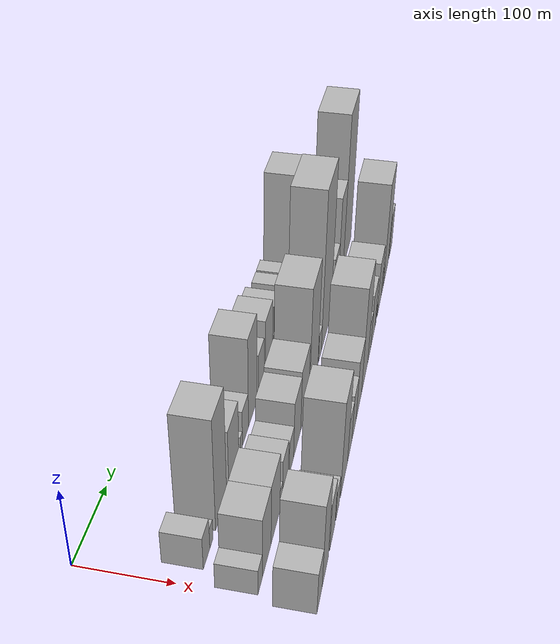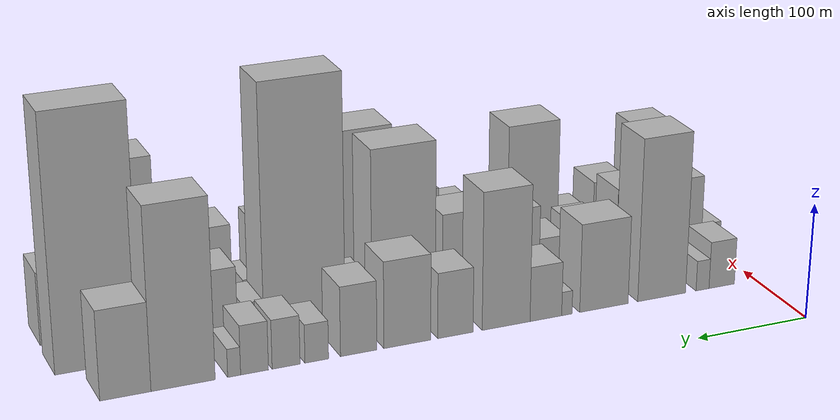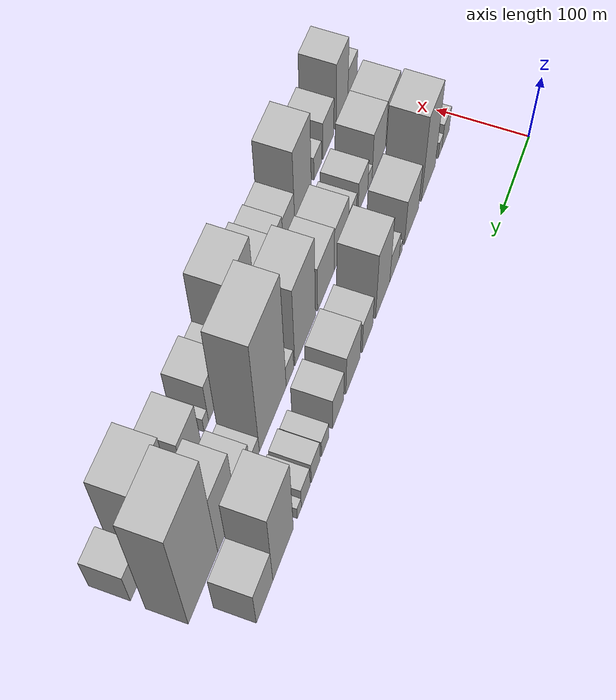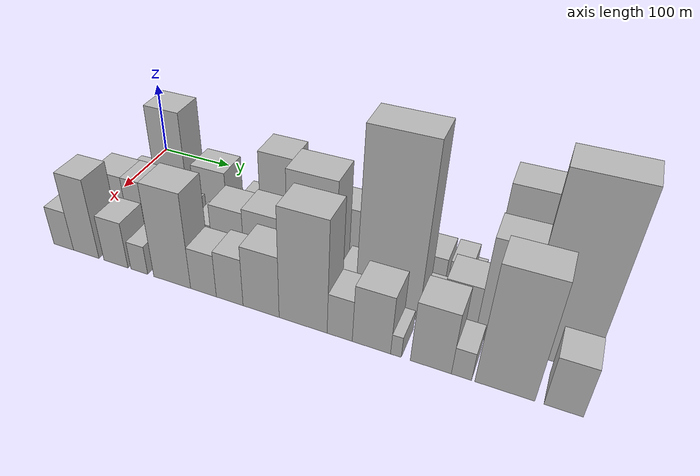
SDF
<sdf version="1.6">
 <world name="default">
  <model name="building_17">
   <static>1</static>
   <pose>100.0000 32.7443 0 0.000000 0.000000 0.000000</pose>
   <link name="link">
    <pose>0 0 21.00 0 0 0</pose>
    <collision name="collision"><geometry><box><size>40.0000 24.3954 42.0000</size></box></geometry></collision>
    <visual name="visual">
     <cast_shadows>0</cast_shadows>
     <geometry><box><size>40.0000 24.3954 42.0000</size></box></geometry>
     <material>
      <script>
       <uri>model://HANNAS_wall/materials/scripts</uri>
       <uri>model://HANNAS_wall/materials/textures</uri>
       <name>vrc/HANNAS_wall</name>
      </script>
     </material>
    </visual>
   </link>
  </model>
  <model name="building_18">
   <static>1</static>
   <pose>100.0000 51.1259 0 0.000000 0.000000 0.000000</pose>
   <link name="link">
    <pose>0 0 13.50 0 0 0</pose>
    <collision name="collision"><geometry><box><size>40.0000 12.3677 27.0000</size></box></geometry></collision>
    <visual name="visual">
     <cast_shadows>0</cast_shadows>
     <geometry><box><size>40.0000 12.3677 27.0000</size></box></geometry>
     <material>
      <script>
       <uri>model://HANNAS_wall/materials/scripts</uri>
       <uri>model://HANNAS_wall/materials/textures</uri>
       <name>vrc/HANNAS_wall</name>
      </script>
     </material>
    </visual>
   </link>
  </model>
  <model name="building_19">
   <static>1</static>
   <pose>100.0000 89.8084 0 0.000000 0.000000 0.000000</pose>
   <link name="link">
    <pose>0 0 72.00 0 0 0</pose>
    <collision name="collision"><geometry><box><size>40.0000 44.9975 144.0000</size></box></geometry></collision>
    <visual name="visual">
     <cast_shadows>0</cast_shadows>
     <geometry><box><size>40.0000 44.9975 144.0000</size></box></geometry>
     <material>
      <script>
       <uri>model://HANNAS_wall/materials/scripts</uri>
       <uri>model://HANNAS_wall/materials/textures</uri>
       <name>vrc/HANNAS_wall</name>
      </script>
     </material>
    </visual>
   </link>
  </model>
  <model name="building_20">
   <static>1</static>
   <pose>100.0000 143.5928 0 0.000000 0.000000 0.000000</pose>
   <link name="link">
    <pose>0 0 39.00 0 0 0</pose>
    <collision name="collision"><geometry><box><size>40.0000 44.5713 78.0000</size></box></geometry></collision>
    <visual name="visual">
     <cast_shadows>0</cast_shadows>
     <geometry><box><size>40.0000 44.5713 78.0000</size></box></geometry>
     <material>
      <script>
       <uri>model://HANNAS_wall/materials/scripts</uri>
       <uri>model://HANNAS_wall/materials/textures</uri>
       <name>vrc/HANNAS_wall</name>
      </script>
     </material>
    </visual>
   </link>
  </model>
  <model name="building_21">
   <static>1</static>
   <pose>100.0000 177.5713 0 0.000000 0.000000 0.000000</pose>
   <link name="link">
    <pose>0 0 10.50 0 0 0</pose>
    <collision name="collision"><geometry><box><size>40.0000 9.3858 21.0000</size></box></geometry></collision>
    <visual name="visual">
     <cast_shadows>0</cast_shadows>
     <geometry><box><size>40.0000 9.3858 21.0000</size></box></geometry>
     <material>
      <script>
       <uri>model://HANNAS_wall/materials/scripts</uri>
       <uri>model://HANNAS_wall/materials/textures</uri>
       <name>vrc/HANNAS_wall</name>
      </script>
     </material>
    </visual>
   </link>
  </model>
  <model name="building_22">
   <static>1</static>
   <pose>100.0000 196.5249 0 0.000000 0.000000 0.000000</pose>
   <link name="link">
    <pose>0 0 24.00 0 0 0</pose>
    <collision name="collision"><geometry><box><size>40.0000 28.5214 48.0000</size></box></geometry></collision>
    <visual name="visual">
     <cast_shadows>0</cast_shadows>
     <geometry><box><size>40.0000 28.5214 48.0000</size></box></geometry>
     <material>
      <script>
       <uri>model://HANNAS_wall/materials/scripts</uri>
       <uri>model://HANNAS_wall/materials/textures</uri>
       <name>vrc/HANNAS_wall</name>
      </script>
     </material>
    </visual>
   </link>
  </model>
  <model name="building_23">
   <static>1</static>
   <pose>100.0000 232.0757 0 0.000000 0.000000 0.000000</pose>
   <link name="link">
    <pose>0 0 60.00 0 0 0</pose>
    <collision name="collision"><geometry><box><size>40.0000 42.5802 120.0000</size></box></geometry></collision>
    <visual name="visual">
     <cast_shadows>0</cast_shadows>
     <geometry><box><size>40.0000 42.5802 120.0000</size></box></geometry>
     <material>
      <script>
       <uri>model://HANNAS_wall/materials/scripts</uri>
       <uri>model://HANNAS_wall/materials/textures</uri>
       <name>vrc/HANNAS_wall</name>
      </script>
     </material>
    </visual>
   </link>
  </model>
  <model name="building_24">
   <static>1</static>
   <pose>100.0000 276.7771 0 0.000000 0.000000 0.000000</pose>
   <link name="link">
    <pose>0 0 28.50 0 0 0</pose>
    <collision name="collision"><geometry><box><size>40.0000 30.8225 57.0000</size></box></geometry></collision>
    <visual name="visual">
     <cast_shadows>0</cast_shadows>
     <geometry><box><size>40.0000 30.8225 57.0000</size></box></geometry>
     <material>
      <script>
       <uri>model://HANNAS_wall/materials/scripts</uri>
       <uri>model://HANNAS_wall/materials/textures</uri>
       <name>vrc/HANNAS_wall</name>
      </script>
     </material>
    </visual>
   </link>
  </model>
  <model name="building_25">
   <static>1</static>
   <pose>100.0000 318.3123 0 0.000000 0.000000 0.000000</pose>
   <link name="link">
    <pose>0 0 37.50 0 0 0</pose>
    <collision name="collision"><geometry><box><size>40.0000 40.2480 75.0000</size></box></geometry></collision>
    <visual name="visual">
     <cast_shadows>0</cast_shadows>
     <geometry><box><size>40.0000 40.2480 75.0000</size></box></geometry>
     <material>
      <script>
       <uri>model://HANNAS_wall/materials/scripts</uri>
       <uri>model://HANNAS_wall/materials/textures</uri>
       <name>vrc/HANNAS_wall</name>
      </script>
     </material>
    </visual>
   </link>
  </model>
  <model name="building_26">
   <static>1</static>
   <pose>100.0000 359.7797 0 0.000000 0.000000 0.000000</pose>
   <link name="link">
    <pose>0 0 30.00 0 0 0</pose>
    <collision name="collision"><geometry><box><size>40.0000 30.6868 60.0000</size></box></geometry></collision>
    <visual name="visual">
     <cast_shadows>0</cast_shadows>
     <geometry><box><size>40.0000 30.6868 60.0000</size></box></geometry>
     <material>
      <script>
       <uri>model://HANNAS_wall/materials/scripts</uri>
       <uri>model://HANNAS_wall/materials/textures</uri>
       <name>vrc/HANNAS_wall</name>
      </script>
     </material>
    </visual>
   </link>
  </model>
  <model name="building_27">
   <static>1</static>
   <pose>100.0000 394.9521 0 0.000000 0.000000 0.000000</pose>
   <link name="link">
    <pose>0 0 16.50 0 0 0</pose>
    <collision name="collision"><geometry><box><size>40.0000 19.6581 33.0000</size></box></geometry></collision>
    <visual name="visual">
     <cast_shadows>0</cast_shadows>
     <geometry><box><size>40.0000 19.6581 33.0000</size></box></geometry>
     <material>
      <script>
       <uri>model://HANNAS_wall/materials/scripts</uri>
       <uri>model://HANNAS_wall/materials/textures</uri>
       <name>vrc/HANNAS_wall</name>
      </script>
     </material>
    </visual>
   </link>
  </model>
  <model name="building_28">
   <static>1</static>
   <pose>100.0000 420.2818 0 0.000000 0.000000 0.000000</pose>
   <link name="link">
    <pose>0 0 21.00 0 0 0</pose>
    <collision name="collision"><geometry><box><size>40.0000 23.0011 42.0000</size></box></geometry></collision>
    <visual name="visual">
     <cast_shadows>0</cast_shadows>
     <geometry><box><size>40.0000 23.0011 42.0000</size></box></geometry>
     <material>
      <script>
       <uri>model://HANNAS_wall/materials/scripts</uri>
       <uri>model://HANNAS_wall/materials/textures</uri>
       <name>vrc/HANNAS_wall</name>
      </script>
     </material>
    </visual>
   </link>
  </model>
  <model name="building_29">
   <static>1</static>
   <pose>100.0000 446.0894 0 0.000000 0.000000 0.000000</pose>
   <link name="link">
    <pose>0 0 21.00 0 0 0</pose>
    <collision name="collision"><geometry><box><size>40.0000 22.6141 42.0000</size></box></geometry></collision>
    <visual name="visual">
     <cast_shadows>0</cast_shadows>
     <geometry><box><size>40.0000 22.6141 42.0000</size></box></geometry>
     <material>
      <script>
       <uri>model://HANNAS_wall/materials/scripts</uri>
       <uri>model://HANNAS_wall/materials/textures</uri>
       <name>vrc/HANNAS_wall</name>
      </script>
     </material>
    </visual>
   </link>
  </model>
  <model name="building_30">
   <static>1</static>
   <pose>100.0000 462.6450 0 0.000000 0.000000 0.000000</pose>
   <link name="link">
    <pose>0 0 12.00 0 0 0</pose>
    <collision name="collision"><geometry><box><size>40.0000 10.4972 24.0000</size></box></geometry></collision>
    <visual name="visual">
     <cast_shadows>0</cast_shadows>
     <geometry><box><size>40.0000 10.4972 24.0000</size></box></geometry>
     <material>
      <script>
       <uri>model://HANNAS_wall/materials/scripts</uri>
       <uri>model://HANNAS_wall/materials/textures</uri>
       <name>vrc/HANNAS_wall</name>
      </script>
     </material>
    </visual>
   </link>
  </model>
  <model name="building_31">
   <static>1</static>
   <pose>100.0000 503.3871 0 0.000000 0.000000 0.000000</pose>
   <link name="link">
    <pose>0 0 76.50 0 0 0</pose>
    <collision name="collision"><geometry><box><size>40.0000 50.9870 153.0000</size></box></geometry></collision>
    <visual name="visual">
     <cast_shadows>0</cast_shadows>
     <geometry><box><size>40.0000 50.9870 153.0000</size></box></geometry>
     <material>
      <script>
       <uri>model://HANNAS_wall/materials/scripts</uri>
       <uri>model://HANNAS_wall/materials/textures</uri>
       <name>vrc/HANNAS_wall</name>
      </script>
     </material>
    </visual>
   </link>
  </model>
  <model name="building_32">
   <static>1</static>
   <pose>100.0000 548.8465 0 0.000000 0.000000 0.000000</pose>
   <link name="link">
    <pose>0 0 37.50 0 0 0</pose>
    <collision name="collision"><geometry><box><size>40.0000 39.9317 75.0000</size></box></geometry></collision>
    <visual name="visual">
     <cast_shadows>0</cast_shadows>
     <geometry><box><size>40.0000 39.9317 75.0000</size></box></geometry>
     <material>
      <script>
       <uri>model://HANNAS_wall/materials/scripts</uri>
       <uri>model://HANNAS_wall/materials/textures</uri>
       <name>vrc/HANNAS_wall</name>
      </script>
     </material>
    </visual>
   </link>
  </model>
  <model name="building_46">
   <static>1</static>
   <pose>155.0000 12.8554 0 0.000000 0.000000 0.000000</pose>
   <link name="link">
    <pose>0 0 16.50 0 0 0</pose>
    <collision name="collision"><geometry><box><size>40.0000 18.7629 33.0000</size></box></geometry></collision>
    <visual name="visual">
     <cast_shadows>0</cast_shadows>
     <geometry><box><size>40.0000 18.7629 33.0000</size></box></geometry>
     <material>
      <script>
       <uri>model://HANNAS_wall/materials/scripts</uri>
       <uri>model://HANNAS_wall/materials/textures</uri>
       <name>vrc/HANNAS_wall</name>
      </script>
     </material>
    </visual>
   </link>
  </model>
  <model name="building_47">
   <static>1</static>
   <pose>155.0000 42.1539 0 0.000000 0.000000 0.000000</pose>
   <link name="link">
    <pose>0 0 39.00 0 0 0</pose>
    <collision name="collision"><geometry><box><size>40.0000 39.8342 78.0000</size></box></geometry></collision>
    <visual name="visual">
     <cast_shadows>0</cast_shadows>
     <geometry><box><size>40.0000 39.8342 78.0000</size></box></geometry>
     <material>
      <script>
       <uri>model://HANNAS_wall/materials/scripts</uri>
       <uri>model://HANNAS_wall/materials/textures</uri>
       <name>vrc/HANNAS_wall</name>
      </script>
     </material>
    </visual>
   </link>
  </model>
  <model name="building_48">
   <static>1</static>
   <pose>155.0000 83.3145 0 0.000000 0.000000 0.000000</pose>
   <link name="link">
    <pose>0 0 39.00 0 0 0</pose>
    <collision name="collision"><geometry><box><size>40.0000 42.4869 78.0000</size></box></geometry></collision>
    <visual name="visual">
     <cast_shadows>0</cast_shadows>
     <geometry><box><size>40.0000 42.4869 78.0000</size></box></geometry>
     <material>
      <script>
       <uri>model://HANNAS_wall/materials/scripts</uri>
       <uri>model://HANNAS_wall/materials/textures</uri>
       <name>vrc/HANNAS_wall</name>
      </script>
     </material>
    </visual>
   </link>
  </model>
  <model name="building_49">
   <static>1</static>
   <pose>155.0000 111.0960 0 0.000000 0.000000 0.000000</pose>
   <link name="link">
    <pose>0 0 13.50 0 0 0</pose>
    <collision name="collision"><geometry><box><size>40.0000 13.0761 27.0000</size></box></geometry></collision>
    <visual name="visual">
     <cast_shadows>0</cast_shadows>
     <geometry><box><size>40.0000 13.0761 27.0000</size></box></geometry>
     <material>
      <script>
       <uri>model://HANNAS_wall/materials/scripts</uri>
       <uri>model://HANNAS_wall/materials/textures</uri>
       <name>vrc/HANNAS_wall</name>
      </script>
     </material>
    </visual>
   </link>
  </model>
  <model name="building_50">
   <static>1</static>
   <pose>155.0000 132.4482 0 0.000000 0.000000 0.000000</pose>
   <link name="link">
    <pose>0 0 27.00 0 0 0</pose>
    <collision name="collision"><geometry><box><size>40.0000 29.6284 54.0000</size></box></geometry></collision>
    <visual name="visual">
     <cast_shadows>0</cast_shadows>
     <geometry><box><size>40.0000 29.6284 54.0000</size></box></geometry>
     <material>
      <script>
       <uri>model://HANNAS_wall/materials/scripts</uri>
       <uri>model://HANNAS_wall/materials/textures</uri>
       <name>vrc/HANNAS_wall</name>
      </script>
     </material>
    </visual>
   </link>
  </model>
  <model name="building_51">
   <static>1</static>
   <pose>155.0000 164.4611 0 0.000000 0.000000 0.000000</pose>
   <link name="link">
    <pose>0 0 22.50 0 0 0</pose>
    <collision name="collision"><geometry><box><size>40.0000 24.3973 45.0000</size></box></geometry></collision>
    <visual name="visual">
     <cast_shadows>0</cast_shadows>
     <geometry><box><size>40.0000 24.3973 45.0000</size></box></geometry>
     <material>
      <script>
       <uri>model://HANNAS_wall/materials/scripts</uri>
       <uri>model://HANNAS_wall/materials/textures</uri>
       <name>vrc/HANNAS_wall</name>
      </script>
     </material>
    </visual>
   </link>
  </model>
  <model name="building_52">
   <static>1</static>
   <pose>155.0000 197.1195 0 0.000000 0.000000 0.000000</pose>
   <link name="link">
    <pose>0 0 37.50 0 0 0</pose>
    <collision name="collision"><geometry><box><size>40.0000 40.9195 75.0000</size></box></geometry></collision>
    <visual name="visual">
     <cast_shadows>0</cast_shadows>
     <geometry><box><size>40.0000 40.9195 75.0000</size></box></geometry>
     <material>
      <script>
       <uri>model://HANNAS_wall/materials/scripts</uri>
       <uri>model://HANNAS_wall/materials/textures</uri>
       <name>vrc/HANNAS_wall</name>
      </script>
     </material>
    </visual>
   </link>
  </model>
  <model name="building_53">
   <static>1</static>
   <pose>155.0000 241.1258 0 0.000000 0.000000 0.000000</pose>
   <link name="link">
    <pose>0 0 40.50 0 0 0</pose>
    <collision name="collision"><geometry><box><size>40.0000 47.0931 81.0000</size></box></geometry></collision>
    <visual name="visual">
     <cast_shadows>0</cast_shadows>
     <geometry><box><size>40.0000 47.0931 81.0000</size></box></geometry>
     <material>
      <script>
       <uri>model://HANNAS_wall/materials/scripts</uri>
       <uri>model://HANNAS_wall/materials/textures</uri>
       <name>vrc/HANNAS_wall</name>
      </script>
     </material>
    </visual>
   </link>
  </model>
  <model name="building_54">
   <static>1</static>
   <pose>155.0000 298.8081 0 0.000000 0.000000 0.000000</pose>
   <link name="link">
    <pose>0 0 73.50 0 0 0</pose>
    <collision name="collision"><geometry><box><size>40.0000 56.2715 147.0000</size></box></geometry></collision>
    <visual name="visual">
     <cast_shadows>0</cast_shadows>
     <geometry><box><size>40.0000 56.2715 147.0000</size></box></geometry>
     <material>
      <script>
       <uri>model://HANNAS_wall/materials/scripts</uri>
       <uri>model://HANNAS_wall/materials/textures</uri>
       <name>vrc/HANNAS_wall</name>
      </script>
     </material>
    </visual>
   </link>
  </model>
  <model name="building_55">
   <static>1</static>
   <pose>155.0000 340.0629 0 0.000000 0.000000 0.000000</pose>
   <link name="link">
    <pose>0 0 19.50 0 0 0</pose>
    <collision name="collision"><geometry><box><size>40.0000 20.2382 39.0000</size></box></geometry></collision>
    <visual name="visual">
     <cast_shadows>0</cast_shadows>
     <geometry><box><size>40.0000 20.2382 39.0000</size></box></geometry>
     <material>
      <script>
       <uri>model://HANNAS_wall/materials/scripts</uri>
       <uri>model://HANNAS_wall/materials/textures</uri>
       <name>vrc/HANNAS_wall</name>
      </script>
     </material>
    </visual>
   </link>
  </model>
  <model name="building_56">
   <static>1</static>
   <pose>155.0000 384.8739 0 0.000000 0.000000 0.000000</pose>
   <link name="link">
    <pose>0 0 108.00 0 0 0</pose>
    <collision name="collision"><geometry><box><size>40.0000 69.3838 216.0000</size></box></geometry></collision>
    <visual name="visual">
     <cast_shadows>0</cast_shadows>
     <geometry><box><size>40.0000 69.3838 216.0000</size></box></geometry>
     <material>
      <script>
       <uri>model://HANNAS_wall/materials/scripts</uri>
       <uri>model://HANNAS_wall/materials/textures</uri>
       <name>vrc/HANNAS_wall</name>
      </script>
     </material>
    </visual>
   </link>
  </model>
  <model name="building_57">
   <static>1</static>
   <pose>155.0000 428.4614 0 0.000000 0.000000 0.000000</pose>
   <link name="link">
    <pose>0 0 16.50 0 0 0</pose>
    <collision name="collision"><geometry><box><size>40.0000 17.7911 33.0000</size></box></geometry></collision>
    <visual name="visual">
     <cast_shadows>0</cast_shadows>
     <geometry><box><size>40.0000 17.7911 33.0000</size></box></geometry>
     <material>
      <script>
       <uri>model://HANNAS_wall/materials/scripts</uri>
       <uri>model://HANNAS_wall/materials/textures</uri>
       <name>vrc/HANNAS_wall</name>
      </script>
     </material>
    </visual>
   </link>
  </model>
  <model name="building_58">
   <static>1</static>
   <pose>155.0000 459.4946 0 0.000000 0.000000 0.000000</pose>
   <link name="link">
    <pose>0 0 33.00 0 0 0</pose>
    <collision name="collision"><geometry><box><size>40.0000 36.2754 66.0000</size></box></geometry></collision>
    <visual name="visual">
     <cast_shadows>0</cast_shadows>
     <geometry><box><size>40.0000 36.2754 66.0000</size></box></geometry>
     <material>
      <script>
       <uri>model://HANNAS_wall/materials/scripts</uri>
       <uri>model://HANNAS_wall/materials/textures</uri>
       <name>vrc/HANNAS_wall</name>
      </script>
     </material>
    </visual>
   </link>
  </model>
  <model name="building_59">
   <static>1</static>
   <pose>155.0000 499.4931 0 0.000000 0.000000 0.000000</pose>
   <link name="link">
    <pose>0 0 64.50 0 0 0</pose>
    <collision name="collision"><geometry><box><size>40.0000 43.7217 129.0000</size></box></geometry></collision>
    <visual name="visual">
     <cast_shadows>0</cast_shadows>
     <geometry><box><size>40.0000 43.7217 129.0000</size></box></geometry>
     <material>
      <script>
       <uri>model://HANNAS_wall/materials/scripts</uri>
       <uri>model://HANNAS_wall/materials/textures</uri>
       <name>vrc/HANNAS_wall</name>
      </script>
     </material>
    </visual>
   </link>
  </model>
  <model name="building_60">
   <static>1</static>
   <pose>155.0000 555.5379 0 0.000000 0.000000 0.000000</pose>
   <link name="link">
    <pose>0 0 108.00 0 0 0</pose>
    <collision name="collision"><geometry><box><size>40.0000 68.3679 216.0000</size></box></geometry></collision>
    <visual name="visual">
     <cast_shadows>0</cast_shadows>
     <geometry><box><size>40.0000 68.3679 216.0000</size></box></geometry>
     <material>
      <script>
       <uri>model://HANNAS_wall/materials/scripts</uri>
       <uri>model://HANNAS_wall/materials/textures</uri>
       <name>vrc/HANNAS_wall</name>
      </script>
     </material>
    </visual>
   </link>
  </model>
  <model name="building_78">
   <static>1</static>
   <pose>210.0000 8.6337 0 0.000000 0.000000 0.000000</pose>
   <link name="link">
    <pose>0 0 27.00 0 0 0</pose>
    <collision name="collision"><geometry><box><size>40.0000 28.4930 54.0000</size></box></geometry></collision>
    <visual name="visual">
     <cast_shadows>0</cast_shadows>
     <geometry><box><size>40.0000 28.4930 54.0000</size></box></geometry>
     <material>
      <script>
       <uri>model://HANNAS_wall/materials/scripts</uri>
       <uri>model://HANNAS_wall/materials/textures</uri>
       <name>vrc/HANNAS_wall</name>
      </script>
     </material>
    </visual>
   </link>
  </model>
  <model name="building_79">
   <static>1</static>
   <pose>210.0000 40.8856 0 0.000000 0.000000 0.000000</pose>
   <link name="link">
    <pose>0 0 54.00 0 0 0</pose>
    <collision name="collision"><geometry><box><size>40.0000 36.0108 108.0000</size></box></geometry></collision>
    <visual name="visual">
     <cast_shadows>0</cast_shadows>
     <geometry><box><size>40.0000 36.0108 108.0000</size></box></geometry>
     <material>
      <script>
       <uri>model://HANNAS_wall/materials/scripts</uri>
       <uri>model://HANNAS_wall/materials/textures</uri>
       <name>vrc/HANNAS_wall</name>
      </script>
     </material>
    </visual>
   </link>
  </model>
  <model name="building_80">
   <static>1</static>
   <pose>210.0000 82.3372 0 0.000000 0.000000 0.000000</pose>
   <link name="link">
    <pose>0 0 31.50 0 0 0</pose>
    <collision name="collision"><geometry><box><size>40.0000 32.8923 63.0000</size></box></geometry></collision>
    <visual name="visual">
     <cast_shadows>0</cast_shadows>
     <geometry><box><size>40.0000 32.8923 63.0000</size></box></geometry>
     <material>
      <script>
       <uri>model://HANNAS_wall/materials/scripts</uri>
       <uri>model://HANNAS_wall/materials/textures</uri>
       <name>vrc/HANNAS_wall</name>
      </script>
     </material>
    </visual>
   </link>
  </model>
  <model name="building_81">
   <static>1</static>
   <pose>210.0000 113.9526 0 0.000000 0.000000 0.000000</pose>
   <link name="link">
    <pose>0 0 19.50 0 0 0</pose>
    <collision name="collision"><geometry><box><size>40.0000 22.3384 39.0000</size></box></geometry></collision>
    <visual name="visual">
     <cast_shadows>0</cast_shadows>
     <geometry><box><size>40.0000 22.3384 39.0000</size></box></geometry>
     <material>
      <script>
       <uri>model://HANNAS_wall/materials/scripts</uri>
       <uri>model://HANNAS_wall/materials/textures</uri>
       <name>vrc/HANNAS_wall</name>
      </script>
     </material>
    </visual>
   </link>
  </model>
  <model name="building_82">
   <static>1</static>
   <pose>210.0000 156.8392 0 0.000000 0.000000 0.000000</pose>
   <link name="link">
    <pose>0 0 63.00 0 0 0</pose>
    <collision name="collision"><geometry><box><size>40.0000 47.4348 126.0000</size></box></geometry></collision>
    <visual name="visual">
     <cast_shadows>0</cast_shadows>
     <geometry><box><size>40.0000 47.4348 126.0000</size></box></geometry>
     <material>
      <script>
       <uri>model://HANNAS_wall/materials/scripts</uri>
       <uri>model://HANNAS_wall/materials/textures</uri>
       <name>vrc/HANNAS_wall</name>
      </script>
     </material>
    </visual>
   </link>
  </model>
  <model name="building_83">
   <static>1</static>
   <pose>210.0000 196.5001 0 0.000000 0.000000 0.000000</pose>
   <link name="link">
    <pose>0 0 28.50 0 0 0</pose>
    <collision name="collision"><geometry><box><size>40.0000 31.8871 57.0000</size></box></geometry></collision>
    <visual name="visual">
     <cast_shadows>0</cast_shadows>
     <geometry><box><size>40.0000 31.8871 57.0000</size></box></geometry>
     <material>
      <script>
       <uri>model://HANNAS_wall/materials/scripts</uri>
       <uri>model://HANNAS_wall/materials/textures</uri>
       <name>vrc/HANNAS_wall</name>
      </script>
     </material>
    </visual>
   </link>
  </model>
  <model name="building_84">
   <static>1</static>
   <pose>210.0000 228.5952 0 0.000000 0.000000 0.000000</pose>
   <link name="link">
    <pose>0 0 31.50 0 0 0</pose>
    <collision name="collision"><geometry><box><size>40.0000 32.3030 63.0000</size></box></geometry></collision>
    <visual name="visual">
     <cast_shadows>0</cast_shadows>
     <geometry><box><size>40.0000 32.3030 63.0000</size></box></geometry>
     <material>
      <script>
       <uri>model://HANNAS_wall/materials/scripts</uri>
       <uri>model://HANNAS_wall/materials/textures</uri>
       <name>vrc/HANNAS_wall</name>
      </script>
     </material>
    </visual>
   </link>
  </model>
  <model name="building_85">
   <static>1</static>
   <pose>210.0000 265.8093 0 0.000000 0.000000 0.000000</pose>
   <link name="link">
    <pose>0 0 40.50 0 0 0</pose>
    <collision name="collision"><geometry><box><size>40.0000 42.1252 81.0000</size></box></geometry></collision>
    <visual name="visual">
     <cast_shadows>0</cast_shadows>
     <geometry><box><size>40.0000 42.1252 81.0000</size></box></geometry>
     <material>
      <script>
       <uri>model://HANNAS_wall/materials/scripts</uri>
       <uri>model://HANNAS_wall/materials/textures</uri>
       <name>vrc/HANNAS_wall</name>
      </script>
     </material>
    </visual>
   </link>
  </model>
  <model name="building_86">
   <static>1</static>
   <pose>210.0000 313.6880 0 0.000000 0.000000 0.000000</pose>
   <link name="link">
    <pose>0 0 72.00 0 0 0</pose>
    <collision name="collision"><geometry><box><size>40.0000 53.6323 144.0000</size></box></geometry></collision>
    <visual name="visual">
     <cast_shadows>0</cast_shadows>
     <geometry><box><size>40.0000 53.6323 144.0000</size></box></geometry>
     <material>
      <script>
       <uri>model://HANNAS_wall/materials/scripts</uri>
       <uri>model://HANNAS_wall/materials/textures</uri>
       <name>vrc/HANNAS_wall</name>
      </script>
     </material>
    </visual>
   </link>
  </model>
  <model name="building_87">
   <static>1</static>
   <pose>210.0000 354.0327 0 0.000000 0.000000 0.000000</pose>
   <link name="link">
    <pose>0 0 27.00 0 0 0</pose>
    <collision name="collision"><geometry><box><size>40.0000 27.0572 54.0000</size></box></geometry></collision>
    <visual name="visual">
     <cast_shadows>0</cast_shadows>
     <geometry><box><size>40.0000 27.0572 54.0000</size></box></geometry>
     <material>
      <script>
       <uri>model://HANNAS_wall/materials/scripts</uri>
       <uri>model://HANNAS_wall/materials/textures</uri>
       <name>vrc/HANNAS_wall</name>
      </script>
     </material>
    </visual>
   </link>
  </model>
  <model name="building_88">
   <static>1</static>
   <pose>210.0000 387.5571 0 0.000000 0.000000 0.000000</pose>
   <link name="link">
    <pose>0 0 37.50 0 0 0</pose>
    <collision name="collision"><geometry><box><size>40.0000 39.9915 75.0000</size></box></geometry></collision>
    <visual name="visual">
     <cast_shadows>0</cast_shadows>
     <geometry><box><size>40.0000 39.9915 75.0000</size></box></geometry>
     <material>
      <script>
       <uri>model://HANNAS_wall/materials/scripts</uri>
       <uri>model://HANNAS_wall/materials/textures</uri>
       <name>vrc/HANNAS_wall</name>
      </script>
     </material>
    </visual>
   </link>
  </model>
  <model name="building_89">
   <static>1</static>
   <pose>210.0000 413.0204 0 0.000000 0.000000 0.000000</pose>
   <link name="link">
    <pose>0 0 13.50 0 0 0</pose>
    <collision name="collision"><geometry><box><size>40.0000 10.9352 27.0000</size></box></geometry></collision>
    <visual name="visual">
     <cast_shadows>0</cast_shadows>
     <geometry><box><size>40.0000 10.9352 27.0000</size></box></geometry>
     <material>
      <script>
       <uri>model://HANNAS_wall/materials/scripts</uri>
       <uri>model://HANNAS_wall/materials/textures</uri>
       <name>vrc/HANNAS_wall</name>
      </script>
     </material>
    </visual>
   </link>
  </model>
  <model name="building_90">
   <static>1</static>
   <pose>210.0000 447.7279 0 0.000000 0.000000 0.000000</pose>
   <link name="link">
    <pose>0 0 39.00 0 0 0</pose>
    <collision name="collision"><geometry><box><size>40.0000 40.4799 78.0000</size></box></geometry></collision>
    <visual name="visual">
     <cast_shadows>0</cast_shadows>
     <geometry><box><size>40.0000 40.4799 78.0000</size></box></geometry>
     <material>
      <script>
       <uri>model://HANNAS_wall/materials/scripts</uri>
       <uri>model://HANNAS_wall/materials/textures</uri>
       <name>vrc/HANNAS_wall</name>
      </script>
     </material>
    </visual>
   </link>
  </model>
  <model name="building_91">
   <static>1</static>
   <pose>210.0000 477.6487 0 0.000000 0.000000 0.000000</pose>
   <link name="link">
    <pose>0 0 18.00 0 0 0</pose>
    <collision name="collision"><geometry><box><size>40.0000 19.3615 36.0000</size></box></geometry></collision>
    <visual name="visual">
     <cast_shadows>0</cast_shadows>
     <geometry><box><size>40.0000 19.3615 36.0000</size></box></geometry>
     <material>
      <script>
       <uri>model://HANNAS_wall/materials/scripts</uri>
       <uri>model://HANNAS_wall/materials/textures</uri>
       <name>vrc/HANNAS_wall</name>
      </script>
     </material>
    </visual>
   </link>
  </model>
  <model name="building_92">
   <static>1</static>
   <pose>210.0000 517.9566 0 0.000000 0.000000 0.000000</pose>
   <link name="link">
    <pose>0 0 73.50 0 0 0</pose>
    <collision name="collision"><geometry><box><size>40.0000 55.2544 147.0000</size></box></geometry></collision>
    <visual name="visual">
     <cast_shadows>0</cast_shadows>
     <geometry><box><size>40.0000 55.2544 147.0000</size></box></geometry>
     <material>
      <script>
       <uri>model://HANNAS_wall/materials/scripts</uri>
       <uri>model://HANNAS_wall/materials/textures</uri>
       <name>vrc/HANNAS_wall</name>
      </script>
     </material>
    </visual>
   </link>
  </model>
  <model name="building_93">
   <static>1</static>
   <pose>210.0000 570.7666 0 0.000000 0.000000 0.000000</pose>
   <link name="link">
    <pose>0 0 31.50 0 0 0</pose>
    <collision name="collision"><geometry><box><size>40.0000 34.3656 63.0000</size></box></geometry></collision>
    <visual name="visual">
     <cast_shadows>0</cast_shadows>
     <geometry><box><size>40.0000 34.3656 63.0000</size></box></geometry>
     <material>
      <script>
       <uri>model://HANNAS_wall/materials/scripts</uri>
       <uri>model://HANNAS_wall/materials/textures</uri>
       <name>vrc/HANNAS_wall</name>
      </script>
     </material>
    </visual>
   </link>
  </model>
 </world>
</sdf>
